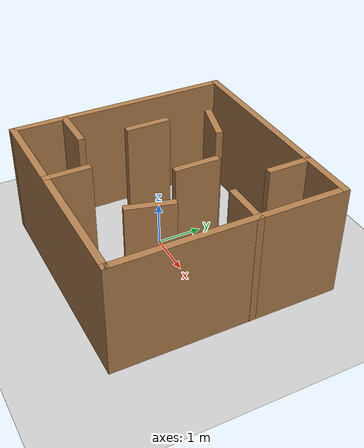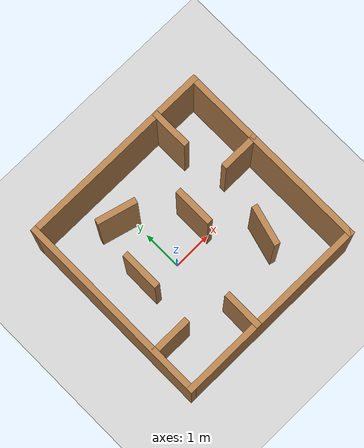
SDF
<sdf version="1.7">
 <world name="default">
  <light name="sun" type="directional">
   <pose>0 0 10 0 -0 0</pose>
   <diffuse>0.8 0.8 0.8 1</diffuse>
   <specular>0.2 0.2 0.2 1</specular>
   <attenuation>
    <range>1000</range>
    <constant>0.9</constant>
    <linear>0.01</linear>
    <quadratic>0.001</quadratic>
   </attenuation>
   <direction>-0.5 0.1 -0.9</direction>
   <spot><inner_angle>0</inner_angle><outer_angle>0</outer_angle><falloff>0</falloff></spot>
  </light>
  <model name="ground_plane">
   <static>1</static>
   <link name="link">
    <collision name="collision">
     <geometry><plane><normal>0 0 1</normal><size>100 100</size></plane></geometry>
     <surface><friction><ode><mu>100</mu><mu2>50</mu2></ode></friction></surface>
    </collision>
    <visual name="visual">
     <cast_shadows>0</cast_shadows>
     <geometry><plane><normal>0 0 1</normal><size>100 100</size></plane></geometry>
     <material>
      <script><uri>file://media/materials/scripts/gazebo.material</uri><name>Gazebo/Grey</name></script>
     </material>
    </visual>
   </link>
  </model>
  <gravity>0 0 -9.8</gravity>
  <magnetic_field>6e-06 2.3e-05 -4.2e-05</magnetic_field>
  <atmosphere type="adiabatic"/>
  <physics type="ode">
   <max_step_size>0.001</max_step_size>
   <real_time_factor>1</real_time_factor>
   <real_time_update_rate>1000</real_time_update_rate>
  </physics>
  <scene><ambient>0.4 0.4 0.4 1</ambient><background>0.7 0.7 0.7 1</background><shadows>1</shadows></scene>
  <audio><device>default</device></audio>
  <spherical_coordinates>
   <surface_model>EARTH_WGS84</surface_model>
   <latitude_deg>0</latitude_deg>
   <longitude_deg>0</longitude_deg>
   <elevation>0</elevation>
   <heading_deg>0</heading_deg>
  </spherical_coordinates>
  <model name="training_env">
   <pose>0.502724 0.000125 0 0 0 -1.57136</pose>
   <link name="Wall_107">
    <collision name="Wall_107_Collision">
     <geometry><box><size>1 0.15 2.5</size></box></geometry>
     <pose>0 0 1.25 0 -0 0</pose>
    </collision>
    <visual name="Wall_107_Visual">
     <pose>0 0 1.25 0 -0 0</pose>
     <geometry><box><size>1 0.15 2.5</size></box></geometry>
     <material>
      <script><uri>file://media/materials/scripts/gazebo.material</uri><name>Gazebo/Wood</name></script>
      <ambient>1 1 1 1</ambient>
     </material>
     <meta><layer>0</layer></meta>
    </visual>
    <pose>-1.97496 1.27044 0 0 -0 0</pose>
   </link>
   <link name="Wall_120">
    <collision name="Wall_120_Collision">
     <geometry><box><size>1 0.15 2.5</size></box></geometry>
     <pose>0 0 1.25 0 -0 0</pose>
    </collision>
    <visual name="Wall_120_Visual">
     <pose>0 0 1.25 0 -0 0</pose>
     <geometry><box><size>1 0.15 2.5</size></box></geometry>
     <material>
      <script><uri>file://media/materials/scripts/gazebo.material</uri><name>Gazebo/Wood</name></script>
      <ambient>1 1 1 1</ambient>
     </material>
     <meta><layer>0</layer></meta>
    </visual>
    <pose>1.02189 1.23648 0 0 -0 -0.261799</pose>
   </link>
   <link name="Wall_122">
    <collision name="Wall_122_Collision">
     <geometry><box><size>1 0.15 2.5</size></box></geometry>
     <pose>0 0 1.25 0 -0 0</pose>
    </collision>
    <visual name="Wall_122_Visual">
     <pose>0 0 1.25 0 -0 0</pose>
     <geometry><box><size>1 0.15 2.5</size></box></geometry>
     <material>
      <script><uri>file://media/materials/scripts/gazebo.material</uri><name>Gazebo/Wood</name></script>
      <ambient>1 1 1 1</ambient>
     </material>
     <meta><layer>0</layer></meta>
    </visual>
    <pose>-0.378042 0.418748 0 0 -0 0</pose>
   </link>
   <link name="Wall_124">
    <collision name="Wall_124_Collision">
     <geometry><box><size>1 0.15 2.5</size></box></geometry>
     <pose>0 0 1.25 0 -0 0</pose>
    </collision>
    <visual name="Wall_124_Visual">
     <pose>0 0 1.25 0 -0 0</pose>
     <geometry><box><size>1 0.15 2.5</size></box></geometry>
     <material>
      <script><uri>file://media/materials/scripts/gazebo.material</uri><name>Gazebo/Wood</name></script>
      <ambient>1 1 1 1</ambient>
     </material>
     <meta><layer>0</layer></meta>
    </visual>
    <pose>-1.49097 -0.873878 0 0 -0 -1.8326</pose>
   </link>
   <link name="Wall_17">
    <collision name="Wall_17_Collision">
     <geometry><box><size>5 0.15 2.5</size></box></geometry>
     <pose>0 0 1.25 0 -0 0</pose>
    </collision>
    <visual name="Wall_17_Visual">
     <pose>0 0 1.25 0 -0 0</pose>
     <geometry><box><size>5 0.15 2.5</size></box></geometry>
     <material>
      <script><uri>file://media/materials/scripts/gazebo.material</uri><name>Gazebo/Wood</name></script>
      <ambient>1 1 1 1</ambient>
     </material>
     <meta><layer>0</layer></meta>
    </visual>
    <pose>-0 2.4237 0 0 -0 0</pose>
   </link>
   <link name="Wall_18">
    <collision name="Wall_18_Collision">
     <geometry><box><size>5 0.15 2.5</size></box></geometry>
     <pose>0 0 1.25 0 -0 0</pose>
    </collision>
    <visual name="Wall_18_Visual">
     <pose>0 0 1.25 0 -0 0</pose>
     <geometry><box><size>5 0.15 2.5</size></box></geometry>
     <material>
      <script><uri>file://media/materials/scripts/gazebo.material</uri><name>Gazebo/Wood</name></script>
      <ambient>1 1 1 1</ambient>
     </material>
     <meta><layer>0</layer></meta>
    </visual>
    <pose>2.425 -0.001303 0 0 -0 -1.5708</pose>
   </link>
   <link name="Wall_19">
    <collision name="Wall_19_Collision">
     <geometry><box><size>5 0.15 2.5</size></box></geometry>
     <pose>0 0 1.25 0 -0 0</pose>
    </collision>
    <visual name="Wall_19_Visual">
     <pose>0 0 1.25 0 -0 0</pose>
     <geometry><box><size>5 0.15 2.5</size></box></geometry>
     <material>
      <script><uri>file://media/materials/scripts/gazebo.material</uri><name>Gazebo/Wood</name></script>
      <ambient>1 1 1 1</ambient>
     </material>
     <meta><layer>0</layer></meta>
    </visual>
    <pose>-0 -2.4263 0 0 -0 3.14159</pose>
   </link>
   <link name="Wall_20">
    <collision name="Wall_20_Collision">
     <geometry><box><size>5 0.15 2.5</size></box></geometry>
     <pose>0 0 1.25 0 -0 0</pose>
    </collision>
    <visual name="Wall_20_Visual">
     <pose>0 0 1.25 0 -0 0</pose>
     <geometry><box><size>5 0.15 2.5</size></box></geometry>
     <material>
      <script><uri>file://media/materials/scripts/gazebo.material</uri><name>Gazebo/Wood</name></script>
      <ambient>1 1 1 1</ambient>
     </material>
     <meta><layer>0</layer></meta>
    </visual>
    <pose>-2.425 -0.001303 0 0 -0 1.5708</pose>
   </link>
   <link name="Wall_45">
    <collision name="Wall_45_Collision">
     <geometry><box><size>1 0.15 2.5</size></box></geometry>
     <pose>0 0 1.25 0 -0 0</pose>
    </collision>
    <visual name="Wall_45_Visual">
     <pose>0 0 1.25 0 -0 0</pose>
     <geometry><box><size>1 0.15 2.5</size></box></geometry>
     <material>
      <script><uri>file://media/materials/scripts/gazebo.material</uri><name>Gazebo/Wood</name></script>
      <ambient>1 1 1 1</ambient>
     </material>
     <meta><layer>0</layer></meta>
    </visual>
    <pose>-0.180328 -1.39109 0 0 -0 0</pose>
   </link>
   <link name="Wall_70">
    <collision name="Wall_70_Collision">
     <geometry><box><size>1 0.15 2.5</size></box></geometry>
     <pose>0 0 1.25 0 -0 0</pose>
    </collision>
    <visual name="Wall_70_Visual">
     <pose>0 0 1.25 0 -0 0</pose>
     <geometry><box><size>1 0.15 2.5</size></box></geometry>
     <material>
      <script><uri>file://media/materials/scripts/gazebo.material</uri><name>Gazebo/Wood</name></script>
      <ambient>1 1 1 1</ambient>
     </material>
     <meta><layer>0</layer></meta>
    </visual>
    <pose>-0.544493 2.0013 0 0 -0 -1.5708</pose>
   </link>
   <link name="Wall_79">
    <collision name="Wall_79_Collision">
     <geometry><box><size>1 0.15 2.5</size></box></geometry>
     <pose>0 0 1.25 0 -0 0</pose>
    </collision>
    <visual name="Wall_79_Visual">
     <pose>0 0 1.25 0 -0 0</pose>
     <geometry><box><size>1 0.15 2.5</size></box></geometry>
     <material>
      <script><uri>file://media/materials/scripts/gazebo.material</uri><name>Gazebo/Wood</name></script>
      <ambient>1 1 1 1</ambient>
     </material>
     <meta><layer>0</layer></meta>
    </visual>
    <pose>1.99621 -0.432942 0 0 -0 3.14159</pose>
   </link>
   <link name="Wall_93">
    <collision name="Wall_93_Collision">
     <geometry><box><size>1 0.15 2.5</size></box></geometry>
     <pose>0 0 1.25 0 -0 0</pose>
    </collision>
    <visual name="Wall_93_Visual">
     <pose>0 0 1.25 0 -0 0</pose>
     <geometry><box><size>1 0.15 2.5</size></box></geometry>
     <material>
      <script><uri>file://media/materials/scripts/gazebo.material</uri><name>Gazebo/Wood</name></script>
      <ambient>1 1 1 1</ambient>
     </material>
     <meta><layer>0</layer></meta>
    </visual>
    <pose>1.29577 -1.93945 0 0 -0 1.5708</pose>
   </link>
   <static>1</static>
  </model>
 </world>
</sdf>
